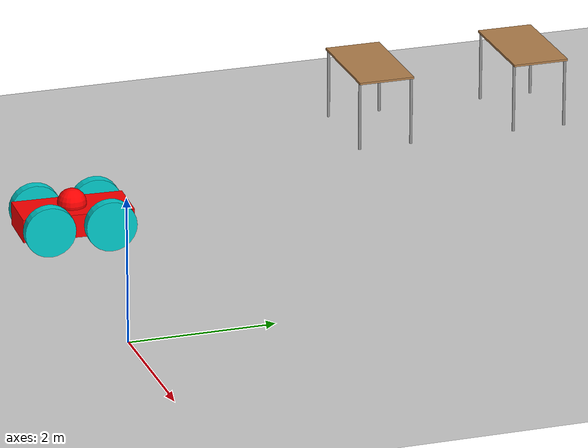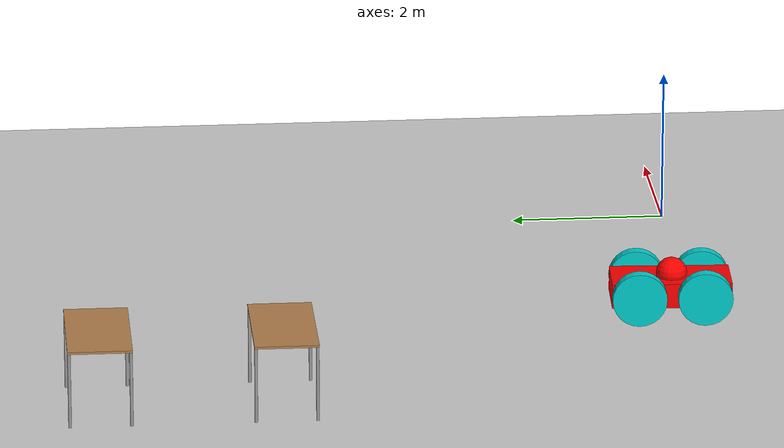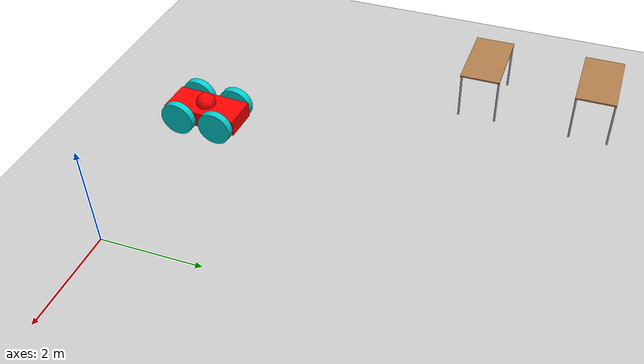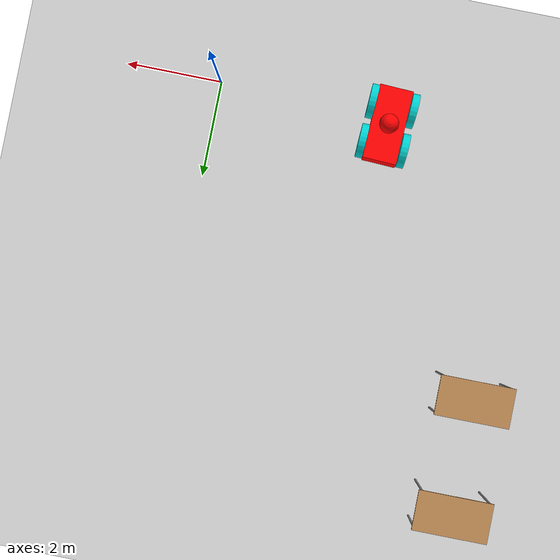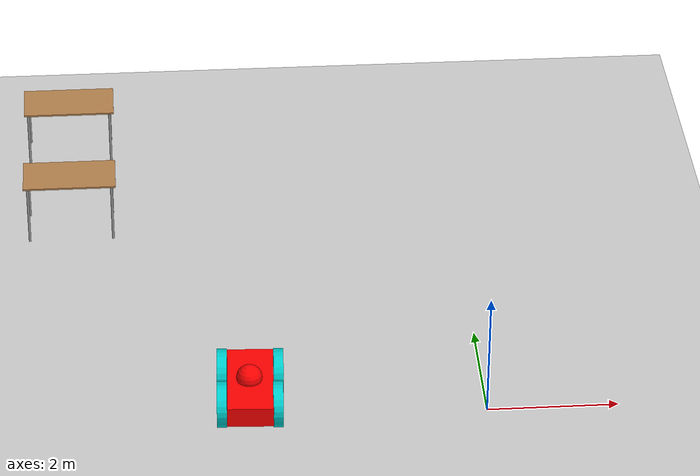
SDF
<sdf version="1.6">
 <world name="default">
  <model name="ground_plane">
   <static>1</static>
   <link name="link">
    <collision name="collision">
     <geometry><plane><normal>0 0 1</normal><size>100 100</size></plane></geometry>
     <surface>
      <contact><collide_bitmask>65535</collide_bitmask></contact>
      <friction><ode><mu>100</mu><mu2>50</mu2></ode></friction>
     </surface>
    </collision>
    <visual name="visual">
     <cast_shadows>0</cast_shadows>
     <geometry><plane><normal>0 0 1</normal><size>100 100</size></plane></geometry>
     <material>
      <script><uri>file://media/materials/scripts/gazebo.material</uri><name>Gazebo/Grey</name></script>
     </material>
    </visual>
   </link>
  </model>
  <model name="table_clone_clone_0">
   <static>1</static>
   <link name="link">
    <collision name="surface">
     <pose>0 0 1 0 -0 0</pose>
     <geometry><box><size>1.5 0.8 0.03</size></box></geometry>
     <surface><friction><ode><mu>0.6</mu><mu2>0.6</mu2></ode></friction></surface>
    </collision>
    <visual name="visual1">
     <pose>0 0 1 0 -0 0</pose>
     <geometry><box><size>1.5 0.8 0.03</size></box></geometry>
     <material>
      <script><uri>file://media/materials/scripts/gazebo.material</uri><name>Gazebo/Wood</name></script>
     </material>
    </visual>
    <collision name="front_left_leg">
     <pose>0.68 0.38 0.5 0 -0 0</pose>
     <geometry><cylinder><radius>0.02</radius><length>1</length></cylinder></geometry>
    </collision>
    <visual name="front_left_leg">
     <pose>0.68 0.38 0.5 0 -0 0</pose>
     <geometry><cylinder><radius>0.02</radius><length>1</length></cylinder></geometry>
     <material>
      <script><uri>file://media/materials/scripts/gazebo.material</uri><name>Gazebo/Grey</name></script>
     </material>
    </visual>
    <collision name="front_right_leg">
     <pose>0.68 -0.38 0.5 0 -0 0</pose>
     <geometry><cylinder><radius>0.02</radius><length>1</length></cylinder></geometry>
    </collision>
    <visual name="front_right_leg">
     <pose>0.68 -0.38 0.5 0 -0 0</pose>
     <geometry><cylinder><radius>0.02</radius><length>1</length></cylinder></geometry>
     <material>
      <script><uri>file://media/materials/scripts/gazebo.material</uri><name>Gazebo/Grey</name></script>
     </material>
    </visual>
    <collision name="back_right_leg">
     <pose>-0.68 -0.38 0.5 0 -0 0</pose>
     <geometry><cylinder><radius>0.02</radius><length>1</length></cylinder></geometry>
    </collision>
    <visual name="back_right_leg">
     <pose>-0.68 -0.38 0.5 0 -0 0</pose>
     <geometry><cylinder><radius>0.02</radius><length>1</length></cylinder></geometry>
     <material>
      <script><uri>file://media/materials/scripts/gazebo.material</uri><name>Gazebo/Grey</name></script>
     </material>
    </visual>
    <collision name="back_left_leg">
     <pose>-0.68 0.38 0.5 0 -0 0</pose>
     <geometry><cylinder><radius>0.02</radius><length>1</length></cylinder></geometry>
    </collision>
    <visual name="back_left_leg">
     <pose>-0.68 0.38 0.5 0 -0 0</pose>
     <geometry><cylinder><radius>0.02</radius><length>1</length></cylinder></geometry>
     <material>
      <script><uri>file://media/materials/scripts/gazebo.material</uri><name>Gazebo/Grey</name></script>
     </material>
    </visual>
   </link>
   <pose>-6.282 7.76109 0 0 -0 0</pose>
  </model>
  <model name="table_clone_clone_0_clone">
   <static>1</static>
   <link name="link">
    <collision name="surface">
     <pose>0 0 1 0 -0 0</pose>
     <geometry><box><size>1.5 0.8 0.03</size></box></geometry>
     <surface><friction><ode><mu>0.6</mu><mu2>0.6</mu2></ode></friction></surface>
    </collision>
    <visual name="visual1">
     <pose>0 0 1 0 -0 0</pose>
     <geometry><box><size>1.5 0.8 0.03</size></box></geometry>
     <material>
      <script><uri>file://media/materials/scripts/gazebo.material</uri><name>Gazebo/Wood</name></script>
     </material>
    </visual>
    <collision name="front_left_leg">
     <pose>0.68 0.38 0.5 0 -0 0</pose>
     <geometry><cylinder><radius>0.02</radius><length>1</length></cylinder></geometry>
    </collision>
    <visual name="front_left_leg">
     <pose>0.68 0.38 0.5 0 -0 0</pose>
     <geometry><cylinder><radius>0.02</radius><length>1</length></cylinder></geometry>
     <material>
      <script><uri>file://media/materials/scripts/gazebo.material</uri><name>Gazebo/Grey</name></script>
     </material>
    </visual>
    <collision name="front_right_leg">
     <pose>0.68 -0.38 0.5 0 -0 0</pose>
     <geometry><cylinder><radius>0.02</radius><length>1</length></cylinder></geometry>
    </collision>
    <visual name="front_right_leg">
     <pose>0.68 -0.38 0.5 0 -0 0</pose>
     <geometry><cylinder><radius>0.02</radius><length>1</length></cylinder></geometry>
     <material>
      <script><uri>file://media/materials/scripts/gazebo.material</uri><name>Gazebo/Grey</name></script>
     </material>
    </visual>
    <collision name="back_right_leg">
     <pose>-0.68 -0.38 0.5 0 -0 0</pose>
     <geometry><cylinder><radius>0.02</radius><length>1</length></cylinder></geometry>
    </collision>
    <visual name="back_right_leg">
     <pose>-0.68 -0.38 0.5 0 -0 0</pose>
     <geometry><cylinder><radius>0.02</radius><length>1</length></cylinder></geometry>
     <material>
      <script><uri>file://media/materials/scripts/gazebo.material</uri><name>Gazebo/Grey</name></script>
     </material>
    </visual>
    <collision name="back_left_leg">
     <pose>-0.68 0.38 0.5 0 -0 0</pose>
     <geometry><cylinder><radius>0.02</radius><length>1</length></cylinder></geometry>
    </collision>
    <visual name="back_left_leg">
     <pose>-0.68 0.38 0.5 0 -0 0</pose>
     <geometry><cylinder><radius>0.02</radius><length>1</length></cylinder></geometry>
     <material>
      <script><uri>file://media/materials/scripts/gazebo.material</uri><name>Gazebo/Grey</name></script>
     </material>
    </visual>
   </link>
   <pose>-6.282 5.4679 0 0 -0 0</pose>
  </model>
  <model name="4wheeler_0">
   <link name="link_0">
    <inertial>
     <mass>1.35085</mass>
     <inertia>
      <ixx>0.277852</ixx>
      <ixy>0</ixy>
      <ixz>0</ixz>
      <iyy>0.0669791</iyy>
      <iyz>0</iyz>
      <izz>0.321192</izz>
     </inertia>
    </inertial>
    <pose>0.011609 -0.00021 0.4 0 -0 0</pose>
    <visual name="visual">
     <geometry><box><size>0.7 1.53729 0.324029</size></box></geometry>
     <material>
      <lighting>1</lighting>
      <script><uri>file://media/materials/scripts/gazebo.material</uri><name>Gazebo/Grey</name></script>
      <shader type="pixel"><normal_map>__default__</normal_map></shader>
      <ambient>1 0 0 1</ambient>
      <diffuse>0.7 0.7 0.7 1</diffuse>
      <specular>0.01 0.01 0.01 1</specular>
      <emissive>0 0 0 1</emissive>
     </material>
    </visual>
    <collision name="collision">
     <geometry><box><size>0.7 1.53729 0.324029</size></box></geometry>
     <surface>
      <friction>
       <ode><mu>1</mu><mu2>1</mu2><fdir1>0 0 0</fdir1><slip1>0</slip1><slip2>0</slip2></ode>
       <torsional>
        <coefficient>1</coefficient>
        <patch_radius>0</patch_radius>
        <surface_radius>0</surface_radius>
        <use_patch_radius>1</use_patch_radius>
        <ode><slip>0</slip></ode>
       </torsional>
      </friction>
      <bounce><restitution_coefficient>0</restitution_coefficient><threshold>1e+06</threshold></bounce>
      <contact>
       <collide_without_contact>0</collide_without_contact>
       <collide_without_contact_bitmask>1</collide_without_contact_bitmask>
       <collide_bitmask>1</collide_bitmask>
       <ode>
        <soft_cfm>0</soft_cfm>
        <soft_erp>0.2</soft_erp>
        <kp>1e+13</kp>
        <kd>1</kd>
        <max_vel>0.01</max_vel>
        <min_depth>0</min_depth>
       </ode>
       <bullet>
        <split_impulse>1</split_impulse>
        <split_impulse_penetration_threshold>-0.01</split_impulse_penetration_threshold>
        <soft_cfm>0</soft_cfm>
        <soft_erp>0.2</soft_erp>
        <kp>1e+13</kp>
        <kd>1</kd>
       </bullet>
      </contact>
     </surface>
    </collision>
   </link>
   <link name="link_1_clone">
    <inertial>
     <mass>1</mass>
     <inertia><ixx>0.145833</ixx><ixy>0</ixy><ixz>0</ixz><iyy>0.145833</iyy><iyz>0</iyz><izz>0.125</izz></inertia>
    </inertial>
    <pose>0.44037 0.416058 0.4 1.5707 0 1.5707</pose>
    <visual name="visual">
     <geometry><cylinder><radius>0.35</radius><length>0.15</length></cylinder></geometry>
     <material>
      <lighting>1</lighting>
      <script><uri>file://media/materials/scripts/gazebo.material</uri><name>Gazebo/Grey</name></script>
      <shader type="pixel"><normal_map>__default__</normal_map></shader>
      <ambient>0 0.8 0.8 1</ambient>
      <diffuse>0.7 0.7 0.7 1</diffuse>
      <specular>0.01 0.01 0.01 1</specular>
      <emissive>0 0 0 1</emissive>
     </material>
    </visual>
    <collision name="collision">
     <geometry><cylinder><radius>0.35</radius><length>0.15</length></cylinder></geometry>
     <surface>
      <friction>
       <ode><mu>1</mu><mu2>1</mu2><fdir1>0 0 0</fdir1><slip1>0</slip1><slip2>0</slip2></ode>
       <torsional>
        <coefficient>1</coefficient>
        <patch_radius>0</patch_radius>
        <surface_radius>0</surface_radius>
        <use_patch_radius>1</use_patch_radius>
        <ode><slip>0</slip></ode>
       </torsional>
      </friction>
      <bounce><restitution_coefficient>0</restitution_coefficient><threshold>1e+06</threshold></bounce>
      <contact>
       <collide_without_contact>0</collide_without_contact>
       <collide_without_contact_bitmask>1</collide_without_contact_bitmask>
       <collide_bitmask>1</collide_bitmask>
       <ode>
        <soft_cfm>0</soft_cfm>
        <soft_erp>0.2</soft_erp>
        <kp>1e+13</kp>
        <kd>1</kd>
        <max_vel>0.01</max_vel>
        <min_depth>0</min_depth>
       </ode>
       <bullet>
        <split_impulse>1</split_impulse>
        <split_impulse_penetration_threshold>-0.01</split_impulse_penetration_threshold>
        <soft_cfm>0</soft_cfm>
        <soft_erp>0.2</soft_erp>
        <kp>1e+13</kp>
        <kd>1</kd>
       </bullet>
      </contact>
     </surface>
    </collision>
   </link>
   <link name="link_1_clone_clone">
    <inertial>
     <mass>1</mass>
     <inertia><ixx>0.145833</ixx><ixy>0</ixy><ixz>0</ixz><iyy>0.145833</iyy><iyz>0</iyz><izz>0.125</izz></inertia>
    </inertial>
    <pose>0.431165 -0.424592 0.4 1.5707 0 1.5707</pose>
    <visual name="visual">
     <geometry><cylinder><radius>0.35</radius><length>0.15</length></cylinder></geometry>
     <material>
      <lighting>1</lighting>
      <script><uri>file://media/materials/scripts/gazebo.material</uri><name>Gazebo/Grey</name></script>
      <shader type="pixel"><normal_map>__default__</normal_map></shader>
      <ambient>0 0.8 0.8 1</ambient>
      <diffuse>0.7 0.7 0.7 1</diffuse>
      <specular>0.01 0.01 0.01 1</specular>
      <emissive>0 0 0 1</emissive>
     </material>
    </visual>
    <collision name="collision">
     <geometry><cylinder><radius>0.35</radius><length>0.15</length></cylinder></geometry>
     <surface>
      <friction>
       <ode><mu>1</mu><mu2>1</mu2><fdir1>0 0 0</fdir1><slip1>0</slip1><slip2>0</slip2></ode>
       <torsional>
        <coefficient>1</coefficient>
        <patch_radius>0</patch_radius>
        <surface_radius>0</surface_radius>
        <use_patch_radius>1</use_patch_radius>
        <ode><slip>0</slip></ode>
       </torsional>
      </friction>
      <bounce><restitution_coefficient>0</restitution_coefficient><threshold>1e+06</threshold></bounce>
      <contact>
       <collide_without_contact>0</collide_without_contact>
       <collide_without_contact_bitmask>1</collide_without_contact_bitmask>
       <collide_bitmask>1</collide_bitmask>
       <ode>
        <soft_cfm>0</soft_cfm>
        <soft_erp>0.2</soft_erp>
        <kp>1e+13</kp>
        <kd>1</kd>
        <max_vel>0.01</max_vel>
        <min_depth>0</min_depth>
       </ode>
       <bullet>
        <split_impulse>1</split_impulse>
        <split_impulse_penetration_threshold>-0.01</split_impulse_penetration_threshold>
        <soft_cfm>0</soft_cfm>
        <soft_erp>0.2</soft_erp>
        <kp>1e+13</kp>
        <kd>1</kd>
       </bullet>
      </contact>
     </surface>
    </collision>
   </link>
   <link name="link_1_clone_clone_0">
    <inertial>
     <mass>1</mass>
     <inertia><ixx>0.145833</ixx><ixy>0</ixy><ixz>0</ixz><iyy>0.145833</iyy><iyz>0</iyz><izz>0.125</izz></inertia>
    </inertial>
    <pose>-0.421453 0.42237 0.4 1.5707 0 1.5707</pose>
    <visual name="visual">
     <geometry><cylinder><radius>0.35</radius><length>0.15</length></cylinder></geometry>
     <material>
      <lighting>1</lighting>
      <script><uri>file://media/materials/scripts/gazebo.material</uri><name>Gazebo/Grey</name></script>
      <shader type="pixel"><normal_map>__default__</normal_map></shader>
      <ambient>0 0.8 0.8 1</ambient>
      <diffuse>0.7 0.7 0.7 1</diffuse>
      <specular>0.01 0.01 0.01 1</specular>
      <emissive>0 0 0 1</emissive>
     </material>
    </visual>
    <collision name="collision">
     <geometry><cylinder><radius>0.35</radius><length>0.15</length></cylinder></geometry>
     <surface>
      <friction>
       <ode><mu>1</mu><mu2>1</mu2><fdir1>0 0 0</fdir1><slip1>0</slip1><slip2>0</slip2></ode>
       <torsional>
        <coefficient>1</coefficient>
        <patch_radius>0</patch_radius>
        <surface_radius>0</surface_radius>
        <use_patch_radius>1</use_patch_radius>
        <ode><slip>0</slip></ode>
       </torsional>
      </friction>
      <bounce><restitution_coefficient>0</restitution_coefficient><threshold>1e+06</threshold></bounce>
      <contact>
       <collide_without_contact>0</collide_without_contact>
       <collide_without_contact_bitmask>1</collide_without_contact_bitmask>
       <collide_bitmask>1</collide_bitmask>
       <ode>
        <soft_cfm>0</soft_cfm>
        <soft_erp>0.2</soft_erp>
        <kp>1e+13</kp>
        <kd>1</kd>
        <max_vel>0.01</max_vel>
        <min_depth>0</min_depth>
       </ode>
       <bullet>
        <split_impulse>1</split_impulse>
        <split_impulse_penetration_threshold>-0.01</split_impulse_penetration_threshold>
        <soft_cfm>0</soft_cfm>
        <soft_erp>0.2</soft_erp>
        <kp>1e+13</kp>
        <kd>1</kd>
       </bullet>
      </contact>
     </surface>
    </collision>
   </link>
   <link name="link_1_clone_clone_clone">
    <inertial>
     <mass>1</mass>
     <inertia><ixx>0.145833</ixx><ixy>0</ixy><ixz>0</ixz><iyy>0.145833</iyy><iyz>0</iyz><izz>0.125</izz></inertia>
    </inertial>
    <pose>-0.415948 -0.421035 0.4 1.5707 0 1.5707</pose>
    <visual name="visual">
     <geometry><cylinder><radius>0.35</radius><length>0.15</length></cylinder></geometry>
     <material>
      <lighting>1</lighting>
      <script><uri>file://media/materials/scripts/gazebo.material</uri><name>Gazebo/Grey</name></script>
      <shader type="pixel"><normal_map>__default__</normal_map></shader>
      <ambient>0 0.8 0.8 1</ambient>
      <diffuse>0.7 0.7 0.7 1</diffuse>
      <specular>0.01 0.01 0.01 1</specular>
      <emissive>0 0 0 1</emissive>
     </material>
    </visual>
    <collision name="collision">
     <geometry><cylinder><radius>0.35</radius><length>0.15</length></cylinder></geometry>
     <surface>
      <friction>
       <ode><mu>1</mu><mu2>1</mu2><fdir1>0 0 0</fdir1><slip1>0</slip1><slip2>0</slip2></ode>
       <torsional>
        <coefficient>1</coefficient>
        <patch_radius>0</patch_radius>
        <surface_radius>0</surface_radius>
        <use_patch_radius>1</use_patch_radius>
        <ode><slip>0</slip></ode>
       </torsional>
      </friction>
      <bounce><restitution_coefficient>0</restitution_coefficient><threshold>1e+06</threshold></bounce>
      <contact>
       <collide_without_contact>0</collide_without_contact>
       <collide_without_contact_bitmask>1</collide_without_contact_bitmask>
       <collide_bitmask>1</collide_bitmask>
       <ode>
        <soft_cfm>0</soft_cfm>
        <soft_erp>0.2</soft_erp>
        <kp>1e+13</kp>
        <kd>1</kd>
        <max_vel>0.01</max_vel>
        <min_depth>0</min_depth>
       </ode>
       <bullet>
        <split_impulse>1</split_impulse>
        <split_impulse_penetration_threshold>-0.01</split_impulse_penetration_threshold>
        <soft_cfm>0</soft_cfm>
        <soft_erp>0.2</soft_erp>
        <kp>1e+13</kp>
        <kd>1</kd>
       </bullet>
      </contact>
     </surface>
    </collision>
   </link>
   <link name="link_5">
    <inertial>
     <mass>1</mass>
     <inertia><ixx>0.1</ixx><ixy>0</ixy><ixz>0</ixz><iyy>0.1</iyy><iyz>0</iyz><izz>0.1</izz></inertia>
    </inertial>
    <pose>-0.001788 -0.009431 0.6 0 -0 0</pose>
    <visual name="visual">
     <geometry><sphere><radius>0.2</radius></sphere></geometry>
     <material>
      <lighting>1</lighting>
      <script><uri>file://media/materials/scripts/gazebo.material</uri><name>Gazebo/Grey</name></script>
      <shader type="pixel"><normal_map>__default__</normal_map></shader>
      <ambient>1 0 0 1</ambient>
      <diffuse>0.7 0.7 0.7 1</diffuse>
      <specular>0.01 0.01 0.01 1</specular>
      <emissive>0 0 0 1</emissive>
     </material>
    </visual>
    <collision name="collision">
     <geometry><sphere><radius>0.2</radius></sphere></geometry>
     <surface>
      <friction>
       <ode><mu>1</mu><mu2>1</mu2><fdir1>0 0 0</fdir1><slip1>0</slip1><slip2>0</slip2></ode>
       <torsional>
        <coefficient>1</coefficient>
        <patch_radius>0</patch_radius>
        <surface_radius>0</surface_radius>
        <use_patch_radius>1</use_patch_radius>
        <ode><slip>0</slip></ode>
       </torsional>
      </friction>
      <bounce><restitution_coefficient>0</restitution_coefficient><threshold>1e+06</threshold></bounce>
      <contact>
       <collide_without_contact>0</collide_without_contact>
       <collide_without_contact_bitmask>1</collide_without_contact_bitmask>
       <collide_bitmask>1</collide_bitmask>
       <ode>
        <soft_cfm>0</soft_cfm>
        <soft_erp>0.2</soft_erp>
        <kp>1e+13</kp>
        <kd>1</kd>
        <max_vel>0.01</max_vel>
        <min_depth>0</min_depth>
       </ode>
       <bullet>
        <split_impulse>1</split_impulse>
        <split_impulse_penetration_threshold>-0.01</split_impulse_penetration_threshold>
        <soft_cfm>0</soft_cfm>
        <soft_erp>0.2</soft_erp>
        <kp>1e+13</kp>
        <kd>1</kd>
       </bullet>
      </contact>
     </surface>
    </collision>
   </link>
   <joint name="link_0_JOINT_0" type="revolute">
    <parent>link_0</parent>
    <child>link_1_clone</child>
    <axis>
     <xyz>0 0 1</xyz>
     <use_parent_model_frame>0</use_parent_model_frame>
     <limit>
      <lower>-1.79769e+308</lower>
      <upper>1.79769e+308</upper>
      <effort>-1</effort>
      <velocity>-1</velocity>
     </limit>
     <dynamics>
      <spring_reference>0</spring_reference>
      <spring_stiffness>0</spring_stiffness>
      <damping>0</damping>
      <friction>0</friction>
     </dynamics>
    </axis>
    <physics>
     <ode><limit><cfm>0</cfm><erp>0.2</erp></limit><suspension><cfm>0</cfm><erp>0.2</erp></suspension></ode>
    </physics>
   </joint>
   <joint name="link_0_JOINT_1" type="revolute">
    <parent>link_0</parent>
    <child>link_1_clone_clone</child>
    <axis>
     <xyz>0 0 1</xyz>
     <use_parent_model_frame>0</use_parent_model_frame>
     <limit>
      <lower>-1.79769e+308</lower>
      <upper>1.79769e+308</upper>
      <effort>-1</effort>
      <velocity>-1</velocity>
     </limit>
     <dynamics>
      <spring_reference>0</spring_reference>
      <spring_stiffness>0</spring_stiffness>
      <damping>0</damping>
      <friction>0</friction>
     </dynamics>
    </axis>
    <physics>
     <ode><limit><cfm>0</cfm><erp>0.2</erp></limit><suspension><cfm>0</cfm><erp>0.2</erp></suspension></ode>
    </physics>
   </joint>
   <joint name="link_0_JOINT_2" type="revolute">
    <parent>link_0</parent>
    <child>link_1_clone_clone_clone</child>
    <axis>
     <xyz>0 0 1</xyz>
     <use_parent_model_frame>0</use_parent_model_frame>
     <limit>
      <lower>-1.79769e+308</lower>
      <upper>1.79769e+308</upper>
      <effort>-1</effort>
      <velocity>-1</velocity>
     </limit>
     <dynamics>
      <spring_reference>0</spring_reference>
      <spring_stiffness>0</spring_stiffness>
      <damping>0</damping>
      <friction>0</friction>
     </dynamics>
    </axis>
    <physics>
     <ode><limit><cfm>0</cfm><erp>0.2</erp></limit><suspension><cfm>0</cfm><erp>0.2</erp></suspension></ode>
    </physics>
   </joint>
   <joint name="link_0_JOINT_3" type="revolute">
    <parent>link_0</parent>
    <child>link_1_clone_clone_0</child>
    <axis>
     <xyz>1 0 0</xyz>
     <use_parent_model_frame>0</use_parent_model_frame>
     <limit>
      <lower>-1.79769e+308</lower>
      <upper>1.79769e+308</upper>
      <effort>-1</effort>
      <velocity>-1</velocity>
     </limit>
     <dynamics>
      <spring_reference>0</spring_reference>
      <spring_stiffness>0</spring_stiffness>
      <damping>0</damping>
      <friction>0</friction>
     </dynamics>
    </axis>
    <physics>
     <ode><limit><cfm>0</cfm><erp>0.2</erp></limit><suspension><cfm>0</cfm><erp>0.2</erp></suspension></ode>
    </physics>
   </joint>
   <joint name="link_0_JOINT_4" type="fixed">
    <parent>link_0</parent>
    <child>link_5</child>
    <physics>
     <ode><limit><cfm>0</cfm><erp>0.2</erp></limit><suspension><cfm>0</cfm><erp>0.2</erp></suspension></ode>
    </physics>
   </joint>
   <static>0</static>
   <pose>-3.59801 0.318713 -0.049993 2e-06 -4e-06 -0.045712</pose>
  </model>
 </world>
</sdf>
